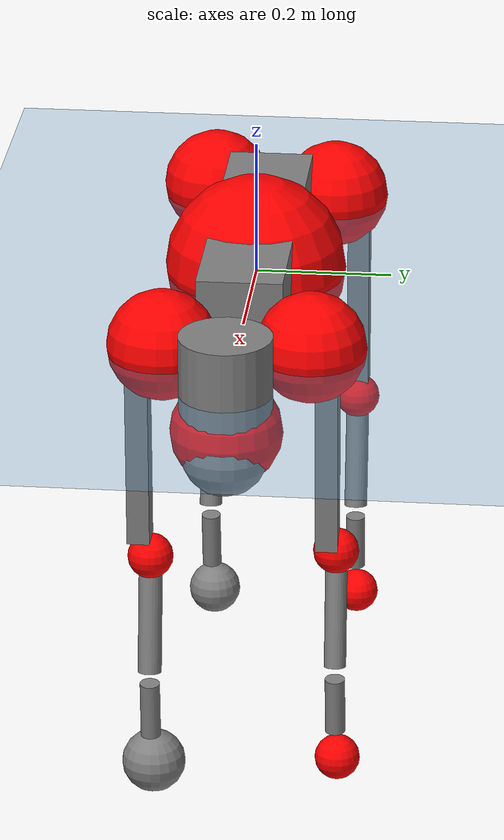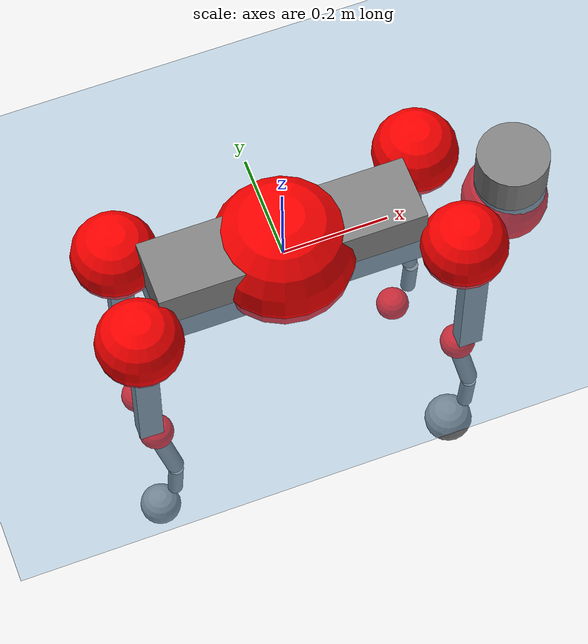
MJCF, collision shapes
<mujoco model="go2">
  <compiler angle="radian" assetdir="assets" balanceinertia="true" inertiafromgeom="false"/>

  <option timestep="0.005" density="1.2" viscosity="2e-05"/>

  <size nkey="1"/>

  <visual>
    <quality shadowsize="8192"/>
    <map shadowclip="0.5"/>
  </visual>

  <default>
    <default class="/">
      <geom contype="0" conaffinity="0" group="1" solref="-1000 -80"/>
      <site size="0.01 0.005 0.005" group="5"/>
      <general forcelimited="true" biastype="affine" gainprm="20" biasprm="0 -20 -0.5"/>
      <default class="go2">
        <joint armature="0.01" damping="0.01" frictionloss="0.2"/>
        <geom condim="1" margin="0.001"/>
        <default class="visual">
          <geom type="mesh" group="2"/>
        </default>
        <default class="collision">
          <geom group="3"/>
          <default class="foot">
            <geom size="0.022 0 0" condim="6" priority="1" friction="0.8 0.02 0.01" solimp="0.015 1 0.022"/>
          </default>
        </default>
        <default class="reward_collision_sphere">
          <geom group="5" rgba="1 0 0 1"/>
        </default>
      </default>
    </default>
  </default>

  <asset>
    <texture type="skybox" colorspace="auto" name="//unnamed_texture_0" builtin="gradient" rgb1="0.95 0.95 0.95" rgb2="0.95 0.95 0.95" width="100" height="600"/>
    <texture type="2d" colorspace="auto" name="texplane" builtin="checker" rgb1="0.345 0.575 0.748" rgb2="0.345 0.575 0.748" markrgb="1 1 1" width="512" height="512"/>
    <material name="MatPlane" class="/" texture="texplane" texuniform="true" texrepeat="2 2" specular="0.9"/>
    <material name="metal" class="/" rgba="0.9 0.95 0.95 1"/>
    <material name="black" class="/" rgba="0 0 0 1"/>
    <material name="white" class="/"/>
    <material name="gray" class="/" rgba="0.671705 0.692426 0.77427 1"/>
    <mesh name="base_0" class="/" file="base_0.obj"/>
    <mesh name="base_1" class="/" file="base_1.obj"/>
    <mesh name="base_2" class="/" file="base_2.obj"/>
    <mesh name="base_3" class="/" file="base_3.obj"/>
    <mesh name="base_4" class="/" file="base_4.obj"/>
    <mesh name="hip_0" class="/" file="hip_0.obj"/>
    <mesh name="hip_1" class="/" file="hip_1.obj"/>
    <mesh name="thigh_0" class="/" file="thigh_0.obj"/>
    <mesh name="thigh_1" class="/" file="thigh_1.obj"/>
    <mesh name="thigh_mirror_0" class="/" file="thigh_mirror_0.obj"/>
    <mesh name="thigh_mirror_1" class="/" file="thigh_mirror_1.obj"/>
    <mesh name="calf_0" class="/" file="calf_0.obj"/>
    <mesh name="calf_1" class="/" file="calf_1.obj"/>
    <mesh name="calf_mirror_0" class="/" file="calf_mirror_0.obj"/>
    <mesh name="calf_mirror_1" class="/" file="calf_mirror_1.obj"/>
    <mesh name="foot" class="/" file="foot.obj"/>
  </asset>

  <worldbody>
    <geom name="floor" class="/" size="100 100 0.125" type="plane" group="0" material="MatPlane"/>
    <light name="toplight_shadow" class="/" pos="0 0 5" dir="0.0990148 0.0990148 -0.990148" type="directional" ambient="0.04 0.04 0.04" diffuse="0.55 0.55 0.55" specular="0.12 0.12 0.12"/>
    <light name="toplight_fill" class="/" pos="0 0 5" dir="0.0990148 0.0990148 -0.990148" type="directional" castshadow="false" ambient="0.04 0.04 0.04" diffuse="0.3 0.3 0.3" specular="0.08 0.08 0.08"/>
    <body name="trunk" childclass="go2" pos="-0.00155855 -0.00108261 0.00996614" quat="1 0.000861262 0.000415629 -0.000242688">
      <inertial pos="0.043802 0.0127449 -0.0152951" quat="-0.0215788 0.701163 -0.00915204 0.712615" mass="16.6732" diaginertia="0.733248 0.0421133 0.222045"/>
      <joint name="//unnamed_joint_0" type="free" armature="0" damping="0" frictionloss="0"/>
      <geom name="//unnamed_geom_1" class="visual" material="black" mesh="base_0"/>
      <geom name="//unnamed_geom_2" class="visual" material="black" mesh="base_1"/>
      <geom name="//unnamed_geom_3" class="visual" material="black" mesh="base_2"/>
      <geom name="//unnamed_geom_4" class="visual" material="white" mesh="base_3"/>
      <geom name="//unnamed_geom_5" class="visual" material="gray" mesh="base_4"/>
      <geom name="trunk_1" class="collision" size="0.252541 0.0627661 0.0765276" type="box"/>
      <geom name="trunk_2" class="collision" size="0.0671295 0.0604165" pos="0.441737 0 0.0160273" type="cylinder"/>
      <geom name="trunk_3" class="collision" size="0.0631017" pos="0.454136 0 -0.0961637"/>
      <geom name="//unnamed_geom_9" class="reward_collision_sphere" size="0.134259"/>
      <geom name="//unnamed_geom_10" class="reward_collision_sphere" size="0.0805554" pos="0.433987 0 -0.0721228"/>
      <site name="imu" pos="0.0344635 0.0123519 0.00465805" size="0.0134259"/>
      <camera name="track" pos="0 -1.75017 0" quat="0.707107 0.707107 0 0" mode="trackcom"/>
      <camera name="ego_camera" pos="0.483585 0 0.0721228" quat="-0.5 -0.5 0.5 0.5"/>
      <body name="FL_hip" pos="0.297324 0.0466487 -6.97402e-05" quat="0.999993 0.0022031 -0.00261108 0.00154382">
        <inertial pos="-0.0212383 0.00925514 0.000771027" quat="0.50189 0.487177 0.537173 0.471391" mass="1.92231" diaginertia="0.00930458 0.000306062 0.00476538"/>
        <joint name="FL_hip_joint" pos="0 0 0" axis="0.998571 -0.0294243 0.0446225" stiffness="0.0239967" range="-1.02517 0.882273" armature="0.00410685" damping="0.073986" frictionloss="0.311348"/>
        <geom name="//unnamed_geom_11" class="visual" material="metal" mesh="hip_0"/>
        <geom name="//unnamed_geom_12" class="visual" material="gray" mesh="hip_1"/>
        <geom name="//unnamed_geom_13" class="collision" size="0.0617591 0.0268518" pos="0 0.0700069 0" quat="0.707107 0.707107 0 0" type="cylinder"/>
        <geom name="//unnamed_geom_14" class="reward_collision_sphere" size="0.0805554" pos="0 0.061256 0"/>
        <body name="FL_thigh" pos="-0.000466402 0.0847549 -0.000650392" quat="1 -0.000558252 0.000110258 1.79366e-05">
          <inertial pos="-0.0123273 -0.0177937 -0.0655743" quat="0.822878 0.0696209 -0.0318254 0.563038" mass="2.44388" diaginertia="0.061178 0.00294036 0.00952444"/>
          <joint name="FL_thigh_joint" pos="0 0 0" axis="0.0206414 0.997375 -0.0693983" range="-1.48545 3.42563" armature="0.0115924" damping="0.0321942" frictionloss="0.438133"/>
          <geom name="//unnamed_geom_15" class="visual" material="metal" mesh="thigh_0"/>
          <geom name="//unnamed_geom_16" class="visual" material="gray" mesh="thigh_1"/>
          <geom name="//unnamed_geom_17" class="collision" size="0.142986 0.0164467 0.022824" pos="0 0 -0.170691" quat="0.707107 0 0.707107 0" type="box"/>
          <body name="FL_calf" pos="-0.0115121 0.011871 -0.326568" quat="0.999983 0.00320939 -0.00385018 -0.00282208">
            <inertial pos="0.0138137 -0.000294695 -0.222416" quat="0.725725 0.00154706 -0.00758872 0.687941" mass="0.647483" diaginertia="0.0147591 0.000751111 0.000648022"/>
            <joint name="FL_calf_joint" pos="0 0 0" axis="0.0576793 0.997629 0.037538" stiffness="0.00322818" range="-2.53192 -0.96141" armature="0.0086167" damping="0.0656625" frictionloss="0.145503"/>
            <geom name="//unnamed_geom_18" class="visual" material="gray" mesh="calf_0"/>
            <geom name="//unnamed_geom_19" class="visual" material="black" mesh="calf_1"/>
            <geom name="FL_calf0" class="collision" size="0.0161111 0.0805554" pos="0.0123996 0 -0.0961637" quat="0.994493 0 -0.104807 0" type="cylinder"/>
            <geom name="//unnamed_geom_21" class="collision" size="0.0147685 0.0436342" pos="0.0309991 0 -0.237204" quat="0.999688 0 0.0249974 0" type="cylinder"/>
            <geom name="//unnamed_geom_22" class="visual" pos="0 0 -0.341381" quat="1 0 0 0" material="black" mesh="foot"/>
            <geom name="FL_foot" class="foot" size="0.0308871" pos="-0.00309991 0 -0.341381"/>
            <geom name="//unnamed_geom_24" class="reward_collision_sphere" size="0.0335647"/>
            <geom name="//unnamed_geom_25" class="reward_collision_sphere" size="0.0335647" pos="-0.00309991 0 -0.341381"/>
            <site name="FL_foot" class="foot" pos="-0.00309991 0 -0.341381" size="0.0134259"/>
          </body>
        </body>
      </body>
      <body name="FR_hip" pos="0.309109 -0.0431838 0.00140223" quat="1 0.000119986 4.0659e-05 -1.448e-05">
        <inertial pos="-0.0208616 0.000242708 -0.00150313" quat="0.499235 0.505585 0.497985 0.497151" mass="1.53257" diaginertia="0.00761516 0.00024279 0.00455948"/>
        <joint name="FR_hip_joint" pos="0 0 0" axis="0.999558 0.0297085 -0.00131064" stiffness="0.0270699" range="-0.785698 0.991045" armature="0.021314" damping="0.00502622" frictionloss="0.43989"/>
        <geom name="//unnamed_geom_26" class="visual" pos="0 -6.33892e-09 -2.71889e-07" quat="4.63268e-05 1 0 0" material="metal" mesh="hip_0"/>
        <geom name="//unnamed_geom_27" class="visual" pos="0 -1.02761e-08 6.72487e-07" quat="4.63268e-05 1 0 0" material="gray" mesh="hip_1"/>
        <geom name="//unnamed_geom_28" class="collision" size="0.0617591 0.0268518" pos="0 -0.0700069 0" quat="0.707107 0.707107 0 0" type="cylinder"/>
        <geom name="//unnamed_geom_29" class="reward_collision_sphere" size="0.0805554" pos="0 -0.061256 0"/>
        <body name="FR_thigh" pos="0.00686028 -0.0971586 0.00760067" quat="0.999999 0.000997786 -0.00110999 -0.000846713">
          <inertial pos="-0.00475426 0.0168363 -0.0509475" quat="0.547395 -0.0451067 0.140489 0.823764" mass="3.71095" diaginertia="0.05923 0.00301408 0.00961089"/>
          <joint name="FR_thigh_joint" pos="0 0 0" axis="-0.0439184 -0.998471 0.0335754" stiffness="0.0252317" range="-3.78315 1.37985" armature="0.0121305" damping="0.0657586" frictionloss="0.0558885"/>
          <geom name="//unnamed_geom_30" class="visual" material="metal" mesh="thigh_mirror_0"/>
          <geom name="//unnamed_geom_31" class="visual" material="gray" mesh="thigh_mirror_1"/>
          <geom name="//unnamed_geom_32" class="collision" size="0.142986 0.0164467 0.022824" pos="0 0 -0.170691" quat="0.707107 0 0.707107 0" type="box"/>
          <body name="FR_calf" pos="-0.0126184 0.0135865 -0.347793" quat="1 2.43306e-05 2.39943e-05 0.000653746">
            <inertial pos="0.00892917 0.00136921 -0.240137" quat="0.731884 0.00469533 -0.00687862 0.681379" mass="0.595767" diaginertia="0.0155378 0.00084652 0.000548559"/>
            <joint name="FR_calf_joint" pos="0 0 0" axis="-0.000489503 -0.999915 0.0130015" range="1.01129 2.5385" armature="0.0169464" damping="0.00214801" frictionloss="0.459059"/>
            <geom name="//unnamed_geom_33" class="visual" material="gray" mesh="calf_mirror_0"/>
            <geom name="//unnamed_geom_34" class="visual" material="black" mesh="calf_mirror_1"/>
            <geom name="FR_calf0" class="collision" size="0.0174537 0.0805554" pos="0.0154995 0 -0.0961637" quat="0.995004 0 -0.0998334 0" type="cylinder"/>
            <geom name="//unnamed_geom_36" class="collision" size="0.0147685 0.0436342" pos="0.0309991 0 -0.237204" quat="0.999688 0 0.0249974 0" type="cylinder"/>
            <geom name="//unnamed_geom_37" class="visual" pos="0 0 -0.341381" quat="1 0 0 0" material="black" mesh="foot"/>
            <geom name="FR_foot" class="foot" size="0.0471926" pos="-0.00309991 0 -0.341381"/>
            <geom name="//unnamed_geom_39" class="reward_collision_sphere" size="0.0335647"/>
            <geom name="//unnamed_geom_40" class="reward_collision_sphere" size="0.0335647" pos="-0.00309991 0 -0.341381"/>
            <site name="FR_foot" class="foot" pos="-0.00309991 0 -0.341381" size="0.0134259"/>
          </body>
        </body>
      </body>
      <body name="RL_hip" pos="-0.285221 0.0339392 0.000992225" quat="0.999997 0.000662158 -0.00148119 0.00173629">
        <inertial pos="0.00133769 -0.011448 -0.000938264" quat="0.518193 0.517774 0.459301 0.502423" mass="1.6368" diaginertia="0.00974452 0.000289026 0.00676619"/>
        <joint name="RL_hip_joint" pos="0 0 0" axis="-0.999592 0.0172746 -0.0227437" stiffness="0.0288123" range="-1.16727 1.36379" armature="0.0227495" damping="0.0537708" frictionloss="0.275787"/>
        <geom name="//unnamed_geom_41" class="visual" pos="4.59763e-10 0 9.01242e-08" quat="4.63268e-05 0 1 0" material="metal" mesh="hip_0"/>
        <geom name="//unnamed_geom_42" class="visual" pos="7.45331e-10 0 7.99273e-08" quat="4.63268e-05 0 1 0" material="gray" mesh="hip_1"/>
        <geom name="//unnamed_geom_43" class="collision" size="0.0617591 0.0268518" pos="0 0.0700069 0" quat="0.707107 0.707107 0 0" type="cylinder"/>
        <geom name="//unnamed_geom_44" class="reward_collision_sphere" size="0.0805554" pos="0 0.061256 0"/>
        <body name="RL_thigh" pos="0.00928341 0.0990933 0.00427271" quat="1 4.71826e-06 3.63344e-05 -3.45506e-05">
          <inertial pos="-0.00599692 -0.0310422 -0.0496342" quat="0.825956 0.0856708 -0.0178266 0.556902" mass="2.77417" diaginertia="0.052795 0.0033425 0.00874754"/>
          <joint name="RL_thigh_joint" pos="0 0 0" axis="0.0492126 0.998232 -0.0333276" range="-0.515827 4.5738" armature="0.0185485" damping="0.0451695" frictionloss="0.191759"/>
          <geom name="//unnamed_geom_45" class="visual" material="metal" mesh="thigh_0"/>
          <geom name="//unnamed_geom_46" class="visual" material="gray" mesh="thigh_1"/>
          <geom name="//unnamed_geom_47" class="collision" size="0.142986 0.0164467 0.022824" pos="0 0 -0.170691" quat="0.707107 0 0.707107 0" type="box"/>
          <body name="RL_calf" pos="0.00940946 -0.00041109 -0.335323" quat="0.999995 -0.000161053 -0.00184357 0.00257307">
            <inertial pos="0.00902978 -0.000715098 -0.226564" quat="0.6539 0.00636201 0.00500171 0.756538" mass="0.585724" diaginertia="0.0132747 0.000737715 0.000673154"/>
            <joint name="RL_calf_joint" pos="0 0 0" axis="-0.0151515 0.998577 0.0511276" range="-2.75045 -0.842746" armature="0.0202039" damping="0.0185021" frictionloss="0.1417"/>
            <geom name="//unnamed_geom_48" class="visual" material="gray" mesh="calf_0"/>
            <geom name="//unnamed_geom_49" class="visual" material="black" mesh="calf_1"/>
            <geom name="RL_calf0" class="collision" size="0.0174537 0.0805554" pos="0.0154995 0 -0.0961637" quat="0.995004 0 -0.0998334 0" type="cylinder"/>
            <geom name="//unnamed_geom_51" class="collision" size="0.0147685 0.0436342" pos="0.0309991 0 -0.237204" quat="0.999688 0 0.0249974 0" type="cylinder"/>
            <geom name="//unnamed_geom_52" class="visual" pos="0 0 -0.341381" quat="1 0 0 0" material="black" mesh="foot"/>
            <geom name="RL_foot" class="foot" size="0.0126861" pos="-0.00309991 0 -0.341381"/>
            <geom name="//unnamed_geom_54" class="reward_collision_sphere" size="0.0335647"/>
            <geom name="//unnamed_geom_55" class="reward_collision_sphere" size="0.0335647" pos="-0.00309991 0 -0.341381"/>
            <site name="RL_foot" class="foot" pos="-0.00309991 0 -0.341381" size="0.0134259"/>
          </body>
        </body>
      </body>
      <body name="RR_hip" pos="-0.300469 -0.0274734 0.00703215" quat="0.999985 0.00111035 0.00273519 -0.00464507">
        <inertial pos="0.021783 -0.00190816 -0.0124477" quat="0.514249 0.502287 0.493646 0.489458" mass="1.8133" diaginertia="0.0087387 0.000331727 0.00654779"/>
        <joint name="RR_hip_joint" pos="0 0 0" axis="-0.999999 0.000703781 0.00109834" stiffness="0.0375921" range="-0.808804 0.756055" armature="0.0135515" damping="0.0544842" frictionloss="0.28077"/>
        <geom name="//unnamed_geom_56" class="visual" pos="-4.83128e-10 -6.33892e-09 3.62014e-07" quat="2.14617e-09 4.63268e-05 4.63268e-05 -1" material="metal" mesh="hip_0"/>
        <geom name="//unnamed_geom_57" class="visual" pos="-6.87542e-10 -1.02761e-08 -5.92559e-07" quat="2.14617e-09 4.63268e-05 4.63268e-05 -1" material="gray" mesh="hip_1"/>
        <geom name="//unnamed_geom_58" class="collision" size="0.0617591 0.0268518" pos="0 -0.0700069 0" quat="0.707107 0.707107 0 0" type="cylinder"/>
        <geom name="//unnamed_geom_59" class="reward_collision_sphere" size="0.0805554" pos="0 -0.061256 0"/>
        <body name="RR_thigh" pos="-0.000901753 -0.0761589 -0.0133539" quat="1 -0.000177335 0.000687805 0.000120098">
          <inertial pos="-0.0159628 0.0233293 -0.0555753" quat="0.551825 -0.0208227 0.0813275 0.829724" mass="3.92064" diaginertia="0.0730904 0.0035569 0.010559"/>
          <joint name="RR_thigh_joint" pos="0 0 0" axis="-0.0114406 -0.998315 0.0568823" stiffness="0.00547342" range="-4.55641 0.55052" armature="0.0177516" damping="0.0365694" frictionloss="0.279423"/>
          <geom name="//unnamed_geom_60" class="visual" material="metal" mesh="thigh_mirror_0"/>
          <geom name="//unnamed_geom_61" class="visual" material="gray" mesh="thigh_mirror_1"/>
          <geom name="//unnamed_geom_62" class="collision" size="0.142986 0.0164467 0.022824" pos="0 0 -0.170691" quat="0.707107 0 0.707107 0" type="box"/>
          <body name="RR_calf" pos="0.0130237 0.00379056 -0.344326" quat="0.999993 0.00284138 0.00241039 -0.000178454">
            <inertial pos="0.0160041 -0.000652499 -0.227641" quat="0.690262 0.036538 0.0415212 0.721443" mass="0.559343" diaginertia="0.0144694 0.00063034 0.000549278"/>
            <joint name="RR_calf_joint" pos="0 0 0" axis="-0.00932793 -0.999933 -0.00678698" range="0.907011 2.82644" armature="0.0230397" damping="0" frictionloss="0.273584"/>
            <geom name="//unnamed_geom_63" class="visual" material="gray" mesh="calf_mirror_0"/>
            <geom name="//unnamed_geom_64" class="visual" material="black" mesh="calf_mirror_1"/>
            <geom name="RR_calf0" class="collision" size="0.0174537 0.0805554" pos="0.0154995 0 -0.0961637" quat="0.995004 0 -0.0998334 0" type="cylinder"/>
            <geom name="//unnamed_geom_66" class="collision" size="0.0147685 0.0436342" pos="0.0309991 0 -0.237204" quat="0.999688 0 0.0249974 0" type="cylinder"/>
            <geom name="//unnamed_geom_67" class="visual" pos="0 0 -0.341381" quat="1 0 0 0" material="black" mesh="foot"/>
            <geom name="RR_foot" class="foot" size="0.0401367" pos="-0.00309991 0 -0.341381"/>
            <geom name="//unnamed_geom_69" class="reward_collision_sphere" size="0.0335647"/>
            <geom name="//unnamed_geom_70" class="reward_collision_sphere" size="0.0335647" pos="-0.00309991 0 -0.341381"/>
            <site name="RR_foot" class="foot" pos="-0.00309991 0 -0.341381" size="0.0134259"/>
          </body>
        </body>
      </body>
    </body>
  </worldbody>

  <contact>
    <pair class="/" geom1="floor" geom2="FL_foot" name="//unnamed_contact_0"/>
    <pair class="/" geom1="floor" geom2="FR_foot" name="//unnamed_contact_1"/>
    <pair class="/" geom1="floor" geom2="RL_foot" name="//unnamed_contact_2"/>
    <pair class="/" geom1="floor" geom2="RR_foot" name="//unnamed_contact_3"/>
  </contact>

  <actuator>
    <general name="FL_hip" class="/" joint="FL_hip_joint" forcerange="-35.2842 35.2842" gainprm="24.4081" biasprm="0 -24.4081 -0.736719"/>
    <general name="FL_thigh" class="/" joint="FL_thigh_joint" forcerange="-41.8894 41.8894" gainprm="24.4081" biasprm="0 -24.4081 -0.736719"/>
    <general name="FL_calf" class="/" joint="FL_calf_joint" forcerange="-70.8842 70.8842" gainprm="24.4081" biasprm="0 -24.4081 -0.736719"/>
    <general name="FR_hip" class="/" joint="FR_hip_joint" forcerange="-42.582 42.582" gainprm="24.4081" biasprm="0 -24.4081 -0.736719"/>
    <general name="FR_thigh" class="/" joint="FR_thigh_joint" forcerange="-23.3684 23.3684" gainprm="24.4081" biasprm="0 -24.4081 -0.736719"/>
    <general name="FR_calf" class="/" joint="FR_calf_joint" forcerange="-89.4168 89.4168" gainprm="24.4081" biasprm="0 -24.4081 -0.736719"/>
    <general name="RL_hip" class="/" joint="RL_hip_joint" forcerange="-31.9407 31.9407" gainprm="24.4081" biasprm="0 -24.4081 -0.736719"/>
    <general name="RL_thigh" class="/" joint="RL_thigh_joint" forcerange="-46.9038 46.9038" gainprm="24.4081" biasprm="0 -24.4081 -0.736719"/>
    <general name="RL_calf" class="/" joint="RL_calf_joint" forcerange="-70.1624 70.1624" gainprm="24.4081" biasprm="0 -24.4081 -0.736719"/>
    <general name="RR_hip" class="/" joint="RR_hip_joint" forcerange="-38.2721 38.2721" gainprm="24.4081" biasprm="0 -24.4081 -0.736719"/>
    <general name="RR_thigh" class="/" joint="RR_thigh_joint" forcerange="-48.5918 48.5918" gainprm="24.4081" biasprm="0 -24.4081 -0.736719"/>
    <general name="RR_calf" class="/" joint="RR_calf_joint" forcerange="-34.0216 34.0216" gainprm="24.4081" biasprm="0 -24.4081 -0.736719"/>
  </actuator>

  <sensor>
    <gyro site="imu" name="imu_angular_velocity"/>
    <velocimeter site="imu" name="imu_linear_velocity"/>
    <framelinvel objtype="site" objname="FL_foot" name="FL_foot_global_linear_velocity"/>
    <framelinvel objtype="site" objname="FR_foot" name="FR_foot_global_linear_velocity"/>
    <framelinvel objtype="site" objname="RL_foot" name="RL_foot_global_linear_velocity"/>
    <framelinvel objtype="site" objname="RR_foot" name="RR_foot_global_linear_velocity"/>
  </sensor>

  <keyframe>
    <key name="home" qpos="0 0 0.325 1 0 0 0 0.1 0.8 -1.5 -0.1 -0.8 1.5 -0.1 0.8 -1.5 0.1 -0.8 1.5"/>
  </keyframe>
</mujoco>
